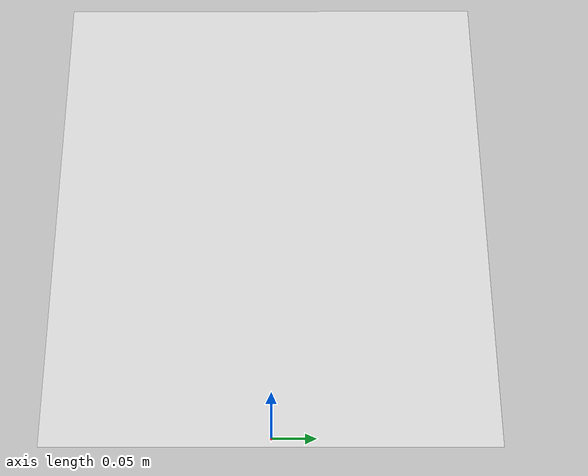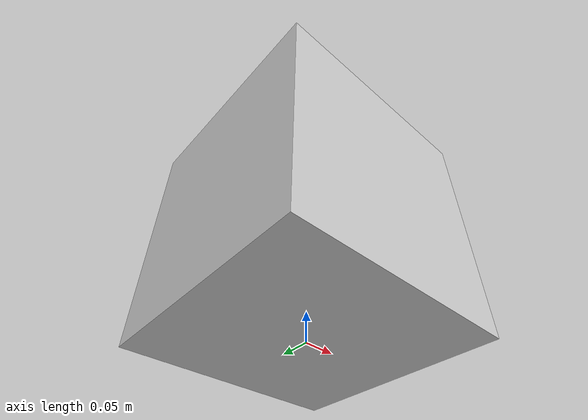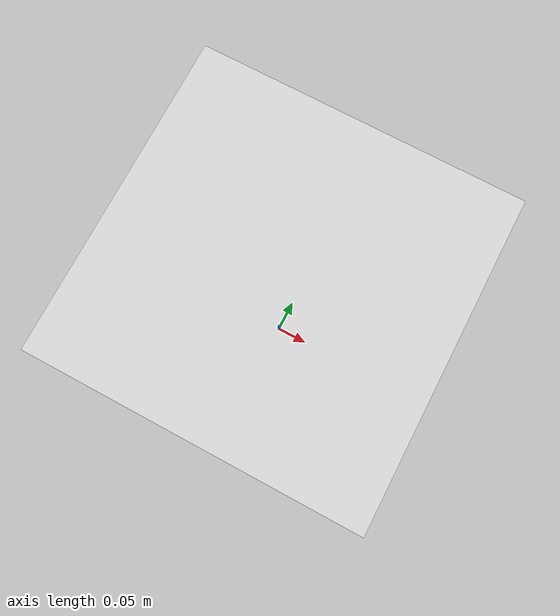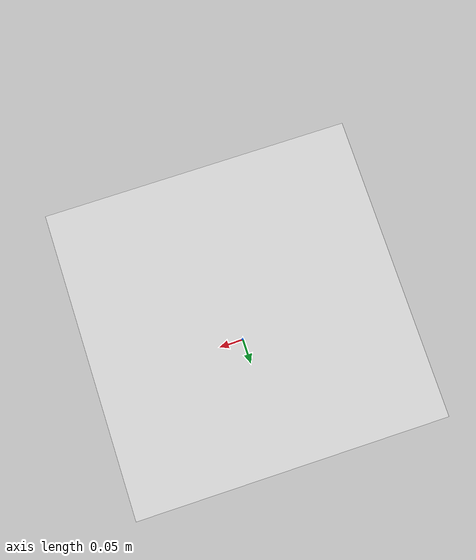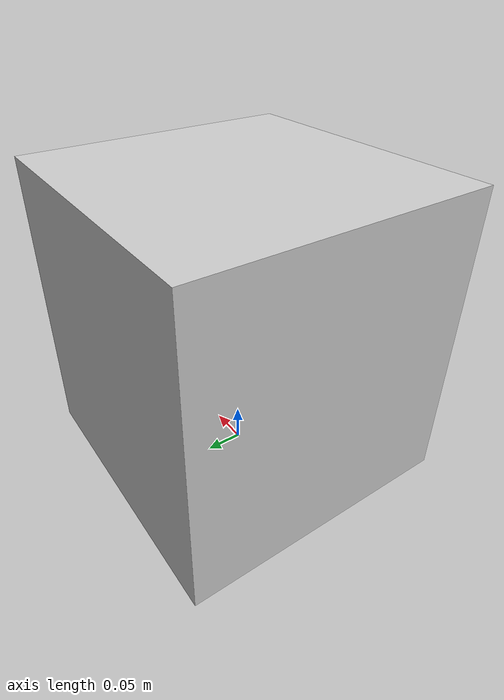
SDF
<?xml version="1.0"?>
<sdf version="1.6">
  <model name="rwc2013/nightstand1">
    <link name="1_link">
      <collision name="1_col">
        <geometry>
          <box>
            <size>0.38 0.376 0.4</size>
          </box>
        </geometry>
      </collision>
      <visual name="1_vis">
        <geometry>
          <box>
            <size>0.38 0.376 0.4</size>
          </box>
        </geometry>
        <material>
          <ambient>0.8 0.8 0.8 1</ambient>
        </material>
      </visual>
      <pose>0.0 0.0 0.2 0 0 0</pose>
    </link>
    <static>true</static>
  </model>
</sdf>
